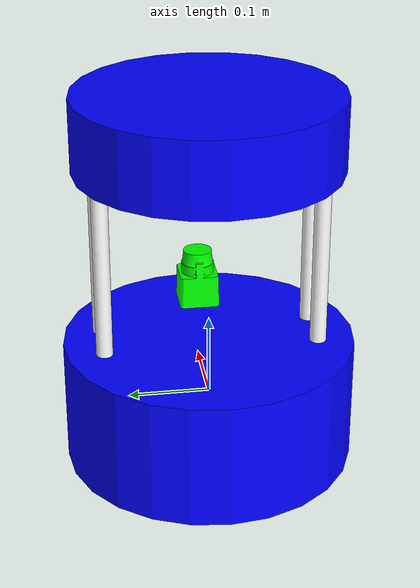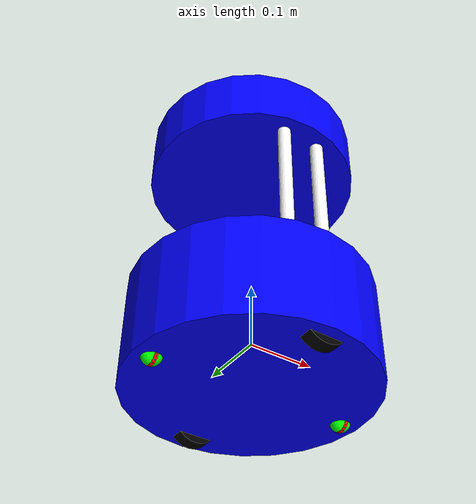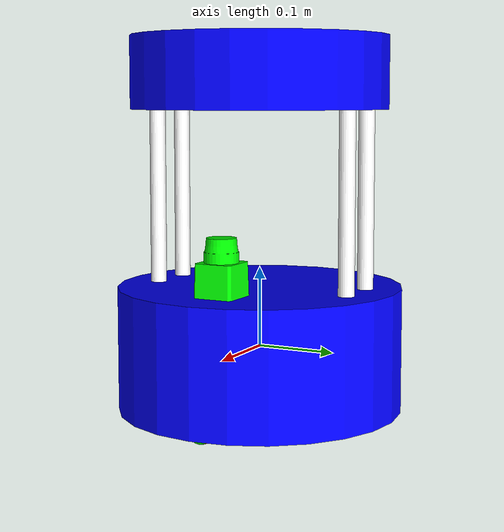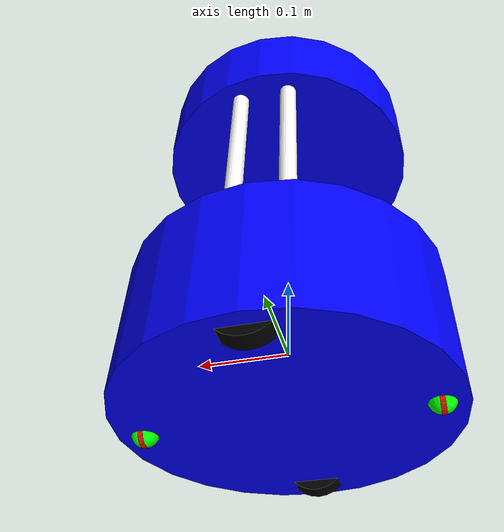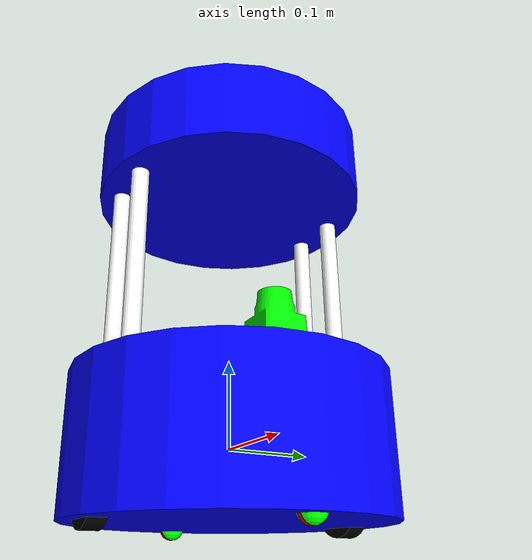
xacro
<?xml version="1.0"?>
<robot xmlns:xacro="http://www.ros.org/wiki/xacro" name="barista_bot">
    <!-- Include -->
    <xacro:include filename="$(find barista_robot_description)/xacro/rviz_materials.xacro"/>
    <xacro:include filename="$(find barista_robot_description)/xacro/standoff_rods.xacro"/>
    <xacro:include filename="$(find barista_robot_description)/xacro/cup_holder_tray.xacro"/>
    <xacro:include filename="$(find barista_robot_description)/xacro/drive_wheels.xacro"/>
    <xacro:include filename="$(find barista_robot_description)/xacro/gazebo_plugins.xacro"/>
    <xacro:include filename="$(find barista_robot_description)/xacro/caster_wheels.xacro"/>
    <xacro:include filename="$(find barista_robot_description)/xacro/laser_scanner.xacro"/>

    <!-- Arguments -->
    <xacro:arg name="robot_name" default="barista"/>
    <xacro:arg name="link_joint_prefix" default=""/>
    <xacro:arg name="color" default="Blue"/>
    <xacro:arg name="include_laser" default="true"/>

    <!-- Properties -->
    <xacro:property name="robot_name" value="$(arg robot_name)"/>
    <xacro:property name="color" value="$(arg color)"/>
    <xacro:property name="base_plate_mass" value="0.8"/>
    <xacro:property name="base_plate_radius" value="0.178"/>
    <xacro:property name="base_plate_length" value="0.155"/>
    <!-- Calculated inertial properties -->
    <xacro:property name="ixx" value="${(1/12.0) * base_plate_mass * (3 * pow(base_plate_radius, 2) + pow(base_plate_length, 2))}"/>
    <xacro:property name="iyy" value="${(1/12.0) * base_plate_mass * (3 * pow(base_plate_radius, 2) + pow(base_plate_length, 2))}"/>
    <xacro:property name="izz" value="${0.5 * base_plate_mass * pow(base_plate_radius, 2)}"/>

    <link name="base_link"/>
    <link name="base_plate_link">
        <visual>
            <geometry>
                <cylinder radius="${base_plate_radius}" length="${base_plate_length}"/>
            </geometry>
            <material name="${color}"/>
        </visual>
        <collision>
            <geometry>
                <cylinder radius="${base_plate_radius}" length="${base_plate_length}"/>
            </geometry>
        </collision>
        <inertial>
            <mass value="${base_plate_mass}"/>
            <origin rpy="0 0 0" xyz="0 0 0"/>
            <inertia ixx="${ixx}" iyy="${iyy}" izz="${izz}" ixy="0" iyz="0" ixz="0"/>
        </inertial>
    </link>
    <gazebo reference="base_plate_link">
        <material>Gazebo/${color}</material>
    </gazebo>
    <joint name="base_link_joint" type="fixed">
        <origin rpy="0 0 0" xyz="0 0 0"/>
        <parent link="base_link"/>
        <child link="base_plate_link"/>
    </joint>
    <!-- Standoff Rods -->
    <xacro:standoff_rods name="standoff_rods1_link" color="White"/>
    <xacro:standoff_rods name="standoff_rods2_link" color="White"/>
    <xacro:standoff_rods name="standoff_rods3_link" color="White"/>
    <xacro:standoff_rods name="standoff_rods4_link" color="White"/>
    <!-- Standoff Rods Joints-->
    <joint name="standoff_rods1_joint" type="fixed">
        <origin rpy="0 0 0" xyz="0.03 0.13 0.1875"/>
        <parent link="base_plate_link"/>
        <child link="standoff_rods1_link"/>
    </joint>
    <joint name="standoff_rods2_joint" type="fixed">
        <origin rpy="0 0 0" xyz="-0.03 0.13 0.1875"/>
        <parent link="base_plate_link"/>
        <child link="standoff_rods2_link"/>
    </joint>
    <joint name="standoff_rods3_joint" type="fixed">
        <origin rpy="0 0 0" xyz="-0.03 -0.13 0.1875"/>
        <parent link="base_plate_link"/>
        <child link="standoff_rods3_link"/>
    </joint>
    <joint name="standoff_rods4_joint" type="fixed">
        <origin rpy="0 0 0" xyz="0.03 -0.13 0.1875"/>
        <parent link="base_plate_link"/>
        <child link="standoff_rods4_link"/>
    </joint>

    <!-- Cup Holder Tray -->
    <xacro:cup_holder_tray name="cup_holder_tray_link" color="${color}"/>
    <joint name="cup_holder_tray_joint" type="fixed">
        <origin rpy="0 0 0" xyz="0 0 0.3425"/>
        <parent link="base_plate_link"/>
        <child link="cup_holder_tray_link"/>
    </joint>

    <!-- Wheel Left and Right -->
    <xacro:wheel name="left_wheel_link" color="Black"/>
    <xacro:wheel name="right_wheel_link" color="Black"/>
    <!-- Wheel Left and Right Joints-->
    <joint name="left_wheel_joint" type="continuous">
        <parent link="base_plate_link"/>
        <child link="left_wheel_link"/>
        <origin xyz="0.0 0.15 -0.053" rpy="-1.57 0 0"/>
        <axis rpy="0 0 0" xyz="0 0 1"/>
        <limit effort="10000" velocity="1000"/>
        <joint_properties damping="1.0" friction="1.0"/>
    </joint>
    <joint name="right_wheel_joint" type="continuous">
        <parent link="base_plate_link"/>
        <child link="right_wheel_link"/>
        <origin xyz="0.0 -0.15 -0.053" rpy="-1.57 0 0"/>
        <axis rpy="0 0 0" xyz="0 0 1"/>
        <limit effort="10000" velocity="1000"/>
        <joint_properties damping="1.0" friction="1.0"/>
    </joint>
    <xacro:differential_drive_controller_plugin
        robot_name="${robot_name}"
        base_frame="base_link"
        left_joint="left_wheel_joint"
        right_joint="right_wheel_joint"
        separation="0.30"
        diameter="0.0704" />
    <xacro:caster_wheels prefix="front"
        pos_x="0.150"
        pos_y="0"
        pos_z="-0.0730"
        parent_link="base_plate_link"
        color_roll="Red"
        color_pitch="Green"
        color_yaw="Blue" />
    <xacro:caster_wheels prefix="back"
        pos_x="-0.150"
        pos_y="0"
        pos_z="-0.0730"
        parent_link="base_plate_link"
        color_roll="Red"
        color_pitch="Green"
        color_yaw="Blue" />

    <!-- Laser Scanner -->
    <xacro:if value="$(arg include_laser)">
        <xacro:laser_scanner
            name="laser_scanner"
            color="Green"
            ray_pos="0.0 0.0 0.047" />
        <joint name="laser_scanner_joint" type="fixed">
            <origin rpy="0 0 0" xyz="0.10 0.0 0.0775"/>
            <parent link="base_plate_link"/>
            <child link="laser_scanner_link"/>
        </joint>
        <xacro:laser_scanner_plugin
            robot_name="${robot_name}"
            link_name="laser_scanner_ray_link"
            out_topic="scan"/>
    </xacro:if>

    <xacro:joint_state_publisher_plugin
        robot_name="${robot_name}"
        rate="10"
        joints="${[
            'left_wheel_joint',
            'right_wheel_joint',
            'front_roll_joint',
            'front_pitch_joint',
            'front_yaw_joint',
            'back_roll_joint',
            'back_pitch_joint',
            'back_yaw_joint'
        ]}"/>
</robot>

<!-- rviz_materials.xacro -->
<robot xmlns:xacro="http://www.ros.org/wiki/xacro">
  <material name="Blue">
      <color rgba="0.0 0.0 1.0 1"/>
  </material>
  <material name="White">
      <color rgba="1 1 1 1"/>
  </material>
  <material name="Black">
      <color rgba="0 0 0 1"/>
  </material>
  <material name="Red">
      <color rgba="1 0 0 1"/>
  </material>
  <material name="Green">
      <color rgba="0 1 0 1"/>
  </material>
</robot>

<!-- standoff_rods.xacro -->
<robot xmlns:xacro="http://www.ros.org/wiki/xacro">
    <xacro:macro name="standoff_rods" params="name color">
    <xacro:property name="radius_rods" value="0.010"/>
    <xacro:property name="width_rods" value="0.220"/>
    <xacro:property name="mass_rods" value="0.1000"/>
    <!-- Calculated inertial properties -->
    <xacro:property name="ixx" value="${(1/12.0) * mass_rods * (3 * pow(radius_rods, 2) + pow(width_rods, 2))}"/>
    <xacro:property name="iyy" value="${(1/12.0) * mass_rods * (3 * pow(radius_rods, 2) + pow(width_rods, 2))}"/>
    <xacro:property name="izz" value="${0.5 * mass_rods * pow(radius_rods, 2)}"/>

        <link name="${name}">
            <visual>
                <geometry>
                    <cylinder radius="${radius_rods}" length="${width_rods}"/>
                </geometry>
                <material name="${color}"/>
            </visual>
            <collision>
                <geometry>
                    <cylinder radius="${radius_rods}" length="${width_rods}"/>
                </geometry>
            </collision>
            <inertial>
                <mass value="${mass_rods}"/>
                <origin rpy="0 0 0" xyz="0 0 0"/>
                <inertia ixx="${ixx}" iyy="${iyy}" izz="${izz}" ixy="0" iyz="0" ixz="0"/>
            </inertial>
        </link>
        <gazebo reference="${name}">
            <material>Gazebo/${color}</material>
        </gazebo>
    </xacro:macro>
</robot>

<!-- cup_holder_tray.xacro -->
<robot xmlns:xacro="http://www.ros.org/wiki/xacro">
    <!-- Wheel macro -->
    <xacro:macro name="cup_holder_tray" params="name color">
    <xacro:property name="cup_holder_tray_mass" value="0.05"/>
    <xacro:property name="cup_holder_tray_radius" value="0.16"/>
    <xacro:property name="cup_holder_tray_length" value="0.09"/>
    <!-- Calculated inertial properties -->
    <xacro:property name="ixx" value="${(1/12.0) * cup_holder_tray_mass * (3 * pow(cup_holder_tray_radius, 2) + pow(cup_holder_tray_length, 2))}"/>
    <xacro:property name="iyy" value="${(1/12.0) * cup_holder_tray_mass * (3 * pow(cup_holder_tray_radius, 2) + pow(cup_holder_tray_length, 2))}"/>
    <xacro:property name="izz" value="${0.5 * cup_holder_tray_mass * pow(cup_holder_tray_radius, 2)}"/>

        <link name="${name}">
            <visual>
                <geometry>
                    <cylinder radius="${cup_holder_tray_radius}" length="${cup_holder_tray_length}"/>
                </geometry>
                <material name="${color}"/>
            </visual>

            <collision>
                <geometry>
                    <cylinder radius="${cup_holder_tray_radius}" length="${cup_holder_tray_length}"/>
                </geometry>
            </collision>

            <inertial>
                <mass value="${cup_holder_tray_mass}"/>
                <origin xyz="0 0 0" rpy="0 0 0"/>
                <inertia ixx="${ixx}" iyy="${iyy}" izz="${izz}" ixy="0" iyz="0" ixz="0"/>
            </inertial>

        </link>
        <gazebo reference="${name}">
            <material>Gazebo/${color}</material>
        </gazebo>
    </xacro:macro>
</robot>

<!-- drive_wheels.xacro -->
<robot xmlns:xacro="http://www.ros.org/wiki/xacro">
  <!-- Wheel macro -->
  <xacro:macro name="wheel" params="name color">
    <xacro:property name="wheel_radius" value="0.0352"/>
    <xacro:property name="wheel_width" value="0.0206"/>
    <xacro:property name="wheel_mass" value="0.07"/>
    <!-- Calculated inertial properties -->
    <xacro:property name="ixx" value="${(1/12.0) * wheel_mass * (3 * pow(wheel_radius, 2) + pow(wheel_width, 2))}"/>
    <xacro:property name="iyy" value="${(1/12.0) * wheel_mass * (3 * pow(wheel_radius, 2) + pow(wheel_width, 2))}"/>
    <xacro:property name="izz" value="${0.5 * wheel_mass * pow(wheel_radius, 2)}"/>

    <link name="${name}">
      <visual>
        <geometry>
          <cylinder radius="${wheel_radius}" length="${wheel_width}"/>
        </geometry>
        <material name="${color}"/>
      </visual>

      <collision>
        <geometry>
          <cylinder radius="${wheel_radius}" length="${wheel_width}"/>
        </geometry>
      </collision>

      <inertial>
        <mass value="${wheel_mass}"/>
        <origin xyz="0 0 0" rpy="0 0 0"/>
        <inertia ixx="${ixx}" iyy="${iyy}" izz="${izz}" ixy="0" iyz="0" ixz="0"/>
      </inertial>

    </link>
    <gazebo reference="${name}">
        <material>Gazebo/${color}</material>
    </gazebo>

  </xacro:macro>
</robot>

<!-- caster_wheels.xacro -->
<robot xmlns:xacro="http://www.ros.org/wiki/xacro">

    <xacro:macro name="caster_wheels" params="prefix parent_link pos_x pos_y pos_z color_roll color_pitch color_yaw">
        <xacro:property name="radius" value="0.0150"/>
        <xacro:property name="width" value="0.0050"/>
        <xacro:property name="mass_roll" value="0.0015"/>
        <xacro:property name="mass_pitch" value="0.0020"/>
        <xacro:property name="mass_yaw" value="0.0015"/>
        <!-- Calculated inertial properties -->
        <xacro:property name="ixx_roll" value="${(1/12.0) * mass_roll * (3 * pow(radius, 2) + pow(width, 2))}"/>
        <xacro:property name="iyy_roll" value="${(1/12.0) * mass_roll * (3 * pow(radius, 2) + pow(width, 2))}"/>
        <xacro:property name="izz_roll" value="${0.5 * mass_roll * pow(radius, 2)}"/>

        <xacro:property name="inertia_pitch" value="${(2/5.0) * mass_pitch * pow(radius, 2)}"/>

        <xacro:property name="ixx_yaw" value="${(1/12.0) * mass_yaw * (3 * pow(radius, 2) + pow(width, 2))}"/>
        <xacro:property name="iyy_yaw" value="${(1/12.0) * mass_yaw * (3 * pow(radius, 2) + pow(width, 2))}"/>
        <xacro:property name="izz_yaw" value="${0.5 * mass_yaw * pow(radius, 2)}"/>

        <link name="${prefix}_roll_link">
            <visual>
                <origin rpy="1.5707 0 1.5707" xyz="0 0 0"/>
                <geometry>
                    <cylinder radius="${radius}" length="${width}"/>
                </geometry>
                <material name="${color_roll}"/>
            </visual>

            <collision>
                <geometry>
                    <cylinder radius="${radius}" length="${width}"/>
                </geometry>
            </collision>

            <inertial>
                <mass value="${mass_roll}"/>
                <origin rpy="1.5707 0 1.5707" xyz="0 0 0"/>
                <inertia ixx="${ixx_roll}" iyy="${iyy_roll}" izz="${izz_roll}" ixy="0" iyz="0" ixz="0"/>
            </inertial>
        </link>
        <gazebo reference="${prefix}_roll_link">
            <material>Gazebo/${color_roll}</material>
        </gazebo>

        <link name="${prefix}_pitch_link">
            <visual>
                <origin rpy="0 0 0" xyz="0 0 0"/>
                <geometry>
                    <sphere radius="${radius}"/>
                </geometry>
                <material name="${color_pitch}"/>
            </visual>

            <collision>
                <geometry>
                    <sphere radius="${radius}"/>
                </geometry>
            </collision>

            <inertial>
                <origin rpy="0 0 0" xyz="0 0 0"/>
                <mass value="${mass_pitch}"/>
                <inertia ixx="${inertia_pitch}" iyy="${inertia_pitch}" izz="${inertia_pitch}" ixy="0" iyz="0" ixz="0"/>
            </inertial>
        </link>
        <gazebo reference="${prefix}_pitch_link">
            <material>Gazebo/${color_pitch}</material>
        </gazebo>

        <link name="${prefix}_yaw_link">
            <visual>
                <origin rpy="0 0 0" xyz="0 0 0"/>
                <geometry>
                    <cylinder radius="${radius}" length="${width}"/>
                </geometry>
                <material name="${color_yaw}"/>
            </visual>

            <collision>
                <geometry>
                    <cylinder radius="${radius}" length="${width}"/>
                </geometry>
            </collision>

            <inertial>
                <mass value="${mass_yaw}"/>
                <origin rpy="0 0 0" xyz="0 0 0"/>
                <inertia ixx="${ixx_yaw}" iyy="${iyy_yaw}" izz="${izz_yaw}" ixy="0" iyz="0" ixz="0"/>
            </inertial>

        </link>
        <gazebo reference="${prefix}_yaw_link">
            <material>Gazebo/${color_yaw}</material>
        </gazebo>

        <joint name="${prefix}_yaw_joint" type="continuous">
            <origin rpy="0 0 0" xyz="${pos_x} ${pos_y} ${pos_z}" />
            <parent link="${parent_link}" />
            <child link="${prefix}_yaw_link" />
            <axis xyz="0 0 1" />
            <limit effort="1000.0" velocity="100.0" />
            <dynamics damping="0.0" friction="0.1"/>
        </joint>
        <joint name="${prefix}_roll_joint" type="continuous">
            <origin rpy="0 0 0" xyz="0 0 0" />
            <parent link="${prefix}_yaw_link" />
            <child link="${prefix}_roll_link" />
            <axis xyz="1 0 0" />
            <limit effort="1000.0" velocity="100.0" />
            <dynamics damping="0.0" friction="0.1"/>
        </joint>
        <joint name="${prefix}_pitch_joint" type="continuous">
            <origin rpy="0 0 0" xyz="0 0 0" />
            <parent link="${prefix}_roll_link" />
            <child link="${prefix}_pitch_link" />
            <axis xyz="0 1 0" />
            <limit effort="1000.0" velocity="100.0" />
            <dynamics damping="0.0" friction="0.1"/>
        </joint>
    </xacro:macro>
</robot>

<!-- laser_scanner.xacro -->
<robot xmlns:xacro="http://www.ros.org/wiki/xacro">
    <!-- Laser Scanner Macro -->
    <xacro:macro name="laser_scanner" params="name color ray_pos">
        <xacro:property name="mass_scanner" value="0.0100"/>
        <xacro:property name="radius_scanner" value="0.0300"/>
        <xacro:property name="length_scanner" value="0.0275"/>
        <!-- Calculated inertial properties -->
        <xacro:property name="ixx" value="${(1/12.0) * mass_scanner * (3 * pow(radius_scanner, 2) + pow(length_scanner, 2))}"/>
        <xacro:property name="iyy" value="${(1/12.0) * mass_scanner * (3 * pow(radius_scanner, 2) + pow(length_scanner, 2))}"/>
        <xacro:property name="izz" value="${0.5 * mass_scanner * pow(radius_scanner, 2)}"/>

        <!-- Link representation of the visual geometry -->
        <link name="${name}_link">
            <visual>
                <geometry>
                    <mesh filename="package://barista_robot_description/meshes/hokuyo_urg_04lx.dae" scale="1.0 1.0 1.0"/>
                </geometry>
                <material name="${color}"/>
            </visual>

            <collision>
                <geometry>
                    <cylinder radius="${radius_scanner}" length="${length_scanner}"/>
                </geometry>
            </collision>

            <inertial>
                <mass value="${mass_scanner}"/>
                <origin xyz="0 0 0" rpy="0 0 0"/>
                <inertia ixx="${ixx}" iyy="${iyy}" izz="${izz}" ixy="0" iyz="0" ixz="0"/>
            </inertial>

        </link>
        <gazebo reference="${name}_link">
            <material>Gazebo/${color}</material>
        </gazebo>

        <!-- Link representation of the laser rays -->
        <link name="${name}_ray_link"/>
        <joint name="${name}_ray_joint" type="fixed">
            <origin rpy="0 0 0" xyz="${ray_pos}"/>
            <parent link="${name}_link" />
            <child link="${name}_ray_link" />
        </joint>

    </xacro:macro>
</robot>
